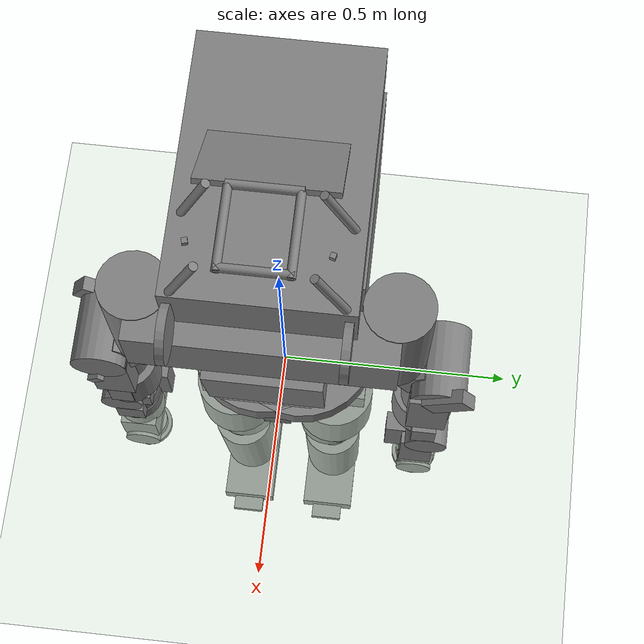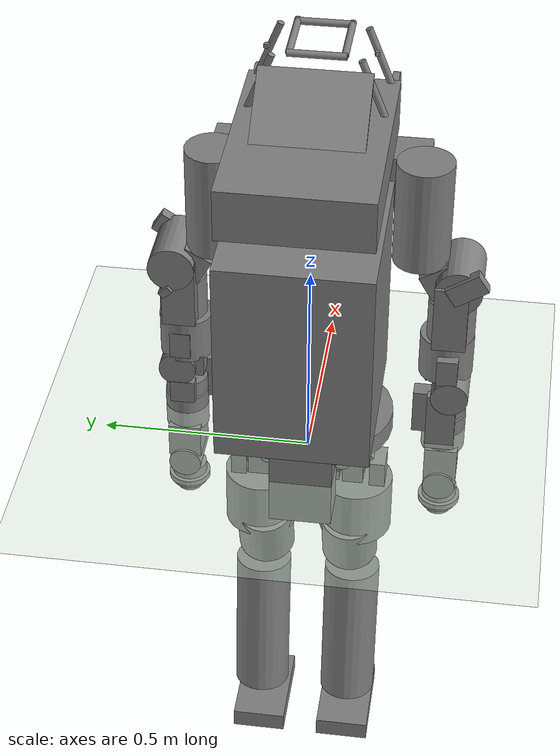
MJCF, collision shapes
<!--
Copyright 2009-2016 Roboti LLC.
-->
<mujoco model="Atlas">
    <compiler angle="radian" meshdir="./meshes/" autolimits="true"/>

    <option cone="pyramidal" impratio="100"/>

	<default>
		<joint damping="0.0" armature="0.1" frictionloss="1.0" type="hinge" pos="0 0 0"/>
		<geom solref="-1000 -80" friction="1.0 0.1 0.1" margin="0.001" group="1" />
        <default class="collision">
            <geom group="3" mass="0" density="0"/>
        </default>
		<default class="viz">
			<geom contype="0" conaffinity="0" group="0" type="mesh" rgba=".6 .6 .7 1"/>
		</default>
		<motor ctrllimited="true"/>
	</default>

	<asset>
		<mesh name="pelvis"         file="pelvis.stl"/>
		<mesh name="ltorso"         file="ltorso.stl"/>
		<mesh name="mtorso"         file="mtorso.stl"/>
		<mesh name="utorso"         file="utorso.stl"/>
		<mesh name="r_clav"         file="r_clav.stl"/>
		<mesh name="r_scap"         file="r_scap.stl"/>
		<mesh name="r_uarm"         file="r_uarm.stl"/>
		<mesh name="r_larm"         file="r_larm.stl"/>
		<mesh name="r_farm"         file="r_farm.stl"/>
		<mesh name="r_hand"         file="r_hand.stl"/>
		<mesh name="l_uglut"        file="l_uglut.stl"/>
		<mesh name="l_lglut"        file="l_lglut.stl"/>
		<mesh name="l_uleg"         file="l_uleg.stl"/>
		<mesh name="l_lleg"         file="l_lleg.stl"/>
		<mesh name="l_talus"        file="l_talus.stl"/>
		<mesh name="l_foot"         file="l_foot.stl"/>
		<mesh name="r_uglut"        file="r_uglut.stl"/>
		<mesh name="r_lglut"        file="r_lglut.stl"/>
		<mesh name="r_uleg"         file="r_uleg.stl"/>
		<mesh name="r_lleg"         file="r_lleg.stl"/>
		<mesh name="r_talus"        file="r_talus.stl"/>
		<mesh name="r_foot"         file="r_foot.stl"/>

        <texture name="texplane" type="2d" builtin="checker" rgb1=".12 .14 .44" rgb2=".37 .55 1" width="100" height="100"/>
        <material name="MatPlane" reflectance="0.5" texture="texplane" texrepeat="1 1" texuniform="true"/>
	</asset>

    <worldbody>
        <geom name="floor" pos="0 0 0" condim="3" material="MatPlane" size="100 100 0.125" rgba="0.8 0.9 0.8 1" type="plane"></geom>
        <light cutoff="100" diffuse="1 1 1" dir="-0 0 -1.3" directional="true" exponent="1" pos="0 0 1.3" specular=".1 .1 .1" castshadow="false"/>
        <light name="spotlight" mode="targetbodycom" target="trunk" pos="0 -1 2"/>

		<body name="trunk" pos="0 0 0.0">
            <camera name="track" mode="trackcom" pos="0 -2 0" xyaxes="1 0 0 0 0 1"/>

            <freejoint/>

            <inertial pos="0.0111 0 0.0271" quat="0.698584 0.713914 0.0424837 -0.0224092" mass="9.509" diaginertia="0.124488 0.116646 0.0957666" />

            <geom class="viz" mesh="pelvis"/>
            <geom class="collision" type="cylinder" size="0.11 0.03" pos="0.046 0 0.01" quat="0.707107 0.707107 0 0" />
            <geom class="collision" type="cylinder" size="0.11 0.03" pos="-0.03 0 0.01" quat="0.707107 0.707107 0 0" />
            <geom class="collision" type="cylinder" size="0.16 0.025" pos="0.01 0.042 0.09" />
            <geom class="collision" type="cylinder" size="0.16 0.025" pos="0.01 -0.042 0.09" />
            <geom class="collision" type="box" size="0.05 0.075 0.1" pos="-0.1 0 -0.02" />

            <body name="ltorso" pos="-0.0125 0 0">
                <inertial pos="-0.0112984 -3.15366e-006 0.0746835" quat="0.997071 0.000128212 0.076485 -0.00012406" mass="2.27" diaginertia="0.003962 0.00341694 0.00169212" />
                <joint name="back_bkz" stiffness="20" damping="10" axis="0 0 1" range="-0.663225 0.663225"/>
                <geom class="viz" mesh="ltorso"/>
                <body name="mtorso" pos="0 0 0.162">
                    <inertial pos="-0.00816266 -0.0131245 0.0305974" quat="0.108378 0.49314 0.746335 0.433648" mass="0.799" diaginertia="0.000536243 0.000487378 0.000358057" />
                    <joint name="back_bky" stiffness="20" damping="10" axis="0 -1 0" range="-0.538783 0.219388"/>
                    <geom class="viz" mesh="mtorso"/>
                    <geom class="collision" type="cylinder" size="0.02 0.075" pos="0 0 -0.02" />
                    <body name="utorso" pos="0 0 0.05">
                        <inertial pos="-0.0622 0.0023 0.3157" quat="0.450601 -0.0341277 -0.0439518 0.89099" mass="84.409" diaginertia="1.62425 1.5673 0.552443" />
                        <joint name="back_bkx" stiffness="30" damping="10" axis="-1 0 0" range="-0.523599 0.523599"/>
                        <geom class="viz" mesh="utorso"/>
                        <geom class="collision" type="box" size="0.2 0.175 0.25" pos="-0.102 0 0.25" />
                        <geom class="collision" type="box" size="0.065 0.25 0.05" pos="0.2 0 0.46" quat="0.707141 0 0.707073 0" />
                        <geom name="middle_chest" class="collision" type="box" size="0.1 0.115 0.05" pos="0.2 0 0.285" quat="0.659983 0 0.75128 0" />
                        <geom class="collision" type="box" size="0.1 0.09 0.05" pos="0.15 0 0.1" quat="0.540302 0 0.841471 0" />
                        <geom class="collision" type="box" size="0.253153 0.17086 0.06" pos="-0.035 0 0.6265" />
                        <geom class="collision" type="cylinder" size="0.008 0.065" pos="0.208 0 0.8215" quat="0.707141 0.707073 0 0" />
                        <geom class="collision" type="cylinder" size="0.008 0.075" pos="0.208 -0.125 0.745" quat="0.981496 -0.191485 0 0" />
                        <geom class="collision" type="cylinder" size="0.008 0.075" pos="0.208 0.125 0.745" quat="0.981496 0.191485 0 0" />
                        <geom class="collision" type="cylinder" size="0.008 0.075" pos="0.063 -0.125 0.745" quat="0.981496 -0.191485 0 0" />
                        <geom class="collision" type="cylinder" size="0.008 0.075" pos="0.063 0.125 0.745" quat="0.981496 0.191485 0 0" />
                        <geom class="collision" type="cylinder" size="0.008 0.075" pos="0.14 0.06 0.8215" quat="0.500048 0.5 0.499952 0.5" />
                        <geom class="collision" type="cylinder" size="0.008 0.075" pos="0.14 -0.06 0.8215" quat="0.500048 0.5 0.499952 0.5" />
                        <geom class="collision" type="box" size="0.1 0.125 0.005" pos="-0.029 0 0.731" quat="0.947651 0 -0.319309 0" />
                        <geom class="collision" type="cylinder" size="0.008 0.065" pos="0.063 0 0.8215" quat="0.707141 0.707073 0 0" />
                        <geom class="collision" type="cylinder" size="0.055 0.008" pos="0.261 0.156 0.6215" quat="0.707141 0.707073 0 0" />
                        <geom class="collision" type="cylinder" size="0.055 0.008" pos="0.261 -0.156 0.6215" quat="0.707141 0.707073 0 0" />
                        <body name="l_clav" pos="0.1406 0.2256 0.4776" quat="0 0 0 1">
                            <inertial pos="0 0 -0.084" quat="0.684588 0.177029 -0.177029 0.684588" mass="4.466" diaginertia="0.011217 0.011 0.00178301" />
                            <joint name="l_arm_shz" axis="0 0 1" range="-1.5708 0.785398"/>
                            <geom class="viz" mesh="r_clav"/>
                            <geom class="collision" type="cylinder" size="0.0555 0.07625" pos="0 -0.11 -0.248" quat="0.707107 0 0.707107 0" />
                            <geom class="collision" type="cylinder" size="0.067 0.13" pos="0.005 -0.015 -0.08" />
                            <geom class="collision" type="box" size="0.05 0.035 0.036" pos="0.004 -0.064 -0.247" quat="0.865324 0.501213 0 0" />
                            <body name="l_scap" pos="0 -0.11 -0.245" axisangle="1 0 0 1.5708">
                                <inertial pos="0 0 0" quat="0.5 0.5 0.5 0.5" mass="3.899" diaginertia="0.00583 0.00583 0.00319" />
                                <joint name="l_arm_shx" axis="1 0 0" range="-1.5708 1.5708"/>
                                <geom class="viz" mesh="r_scap"/>
                                <geom class="collision" type="cylinder" size="0.057 0.0525" pos="-0.005 -0.115 -0.014" quat="0.707107 0.707107 0 0" />
                                <geom class="collision" type="box" size="0.08 0.085 0.04" pos="-0.005 -0.075 -0.015" />
                                <geom class="collision" type="box" size="0.01 0.0145 0.009" pos="0.076 -0.0615 0.0128" quat="0.431177 0.902268 0 0" />
                                <geom class="collision" type="box" size="0.014 0.045 0.025" pos="-0.075 0.015 0.019" quat="0.877583 0.479426 0 0" />
                                <body name="l_uarm" pos="0 -0.187 -0.016">
                                    <inertial pos="0 0.065 0" quat="0.707107 0.707107 0 0" mass="4.386" diaginertia="0.00656 0.00656 0.00358" />
                                    <joint name="l_arm_ely" axis="0 1 0" range="-3.14159 0"/>
                                    <geom class="viz" mesh="r_uarm"/>
                                    <geom class="collision" type="cylinder" size="0.065 0.055" pos="0 -0.035 -0.005" quat="0.707105 0.707108 0 0" />
                                    <geom class="collision" type="box" size="0.025 0.035 0.075" pos="-0.01 -0.043 0.002" quat="0.707107 0 0.707107 0" />
                                    <body name="l_larm" pos="0 -0.119 0.0092">
                                        <inertial pos="0 0 0" quat="0.5 0.5 0.5 0.5" mass="3.248" diaginertia="0.00446 0.00446 0.00265" />
                                        <joint name="l_arm_elx" axis="-1 0 0" range="0 2.35619"/>
                                        <geom class="viz" mesh="r_larm"/>
                                        <geom class="collision" type="cylinder" size="0.051 0.02" pos="0 -0.075 -0.01" quat="0.707107 -0.707107 0 0" />
                                        <geom class="collision" type="cylinder" size="0.045 0.0735" pos="-0.012 0 0.0025" quat="0.707107 0 0.707107 0" />
                                        <geom class="collision" type="box" size="0.0125 0.0775 0.035" pos="-0.07 -0.077 -0.015" />
                                        <geom class="collision" type="box" size="0.0125 0.03 0.03" pos="0.05 -0.067 -0.009" />
                                        <geom class="collision" type="box" size="0.02 0.0575 0.025" pos="-0.032 -0.071 -0.06" />
                                        <geom class="collision" type="box" size="0.0225 0.0275 0.0115" pos="0.03 0.01 -0.05" />
                                        <body name="l_ufarm" pos="0 -0.29955 -0.00921" quat="0 0 1 0">
                                            <inertial pos="0.00015 0.08296 0.00037" quat="0.707107 0.707107 0 0" mass="2.4798" diaginertia="0.012731 0.011948 0.002857" />
                                            <joint name="l_arm_wry" axis="0 1 0" range="-3.011 3.011"/>
                                            <geom class="viz" mesh="r_farm"/>
                                            <geom class="collision" type="cylinder" size="0.053 0.05" pos="0 0.15 0" quat="0.707388 0.706825 0 0" />
                                            <geom class="collision" type="box" size="0.04 0.045 0.055" pos="-0.001 0.07 0" quat="0.707107 0 0.707107 0" />
                                            <geom class="collision" type="cylinder" size="0.04 0.0625" pos="0 0.005 0" quat="0.707388 0 0.706825 0" />
                                            <body name="l_lfarm" pos="0 0 0">
                                                <inertial pos="0.00017 -0.02515 0.00163" quat="0.5 0.5 -0.5 0.5" mass="0.648" diaginertia="0.000825 0.000764 0.000429" />
                                                <joint name="l_arm_wrx" axis="1 0 0" range="-1.7628 1.7628"/>
                                                <geom class="viz" mesh="r_hand"/>
                                                <geom class="collision" type="cylinder" size="0.031 0.01" pos="0 -0.104 0" quat="0.707107 0.707107 0 0" />
                                                <geom class="collision" type="cylinder" size="0.045 0.0075" pos="0 -0.087 0" quat="0.707107 0.707107 0 0" />
                                                <geom class="collision" type="cylinder" size="0.052 0.0075" pos="0 -0.075 0" quat="0.707107 0.707107 0 0" />
                                                <geom class="collision" type="cylinder" size="0.043 0.0135" pos="0 -0.052 0" quat="0.707107 0.707107 0 0" />
                                            </body>
                                        </body>
                                    </body>
                                </body>
                            </body>
                        </body>
                        <body name="r_clav" pos="0.1406 -0.2256 0.4776">
                            <inertial pos="0 0 -0.084" quat="0.684588 0.177029 -0.177029 0.684588" mass="4.466" diaginertia="0.011217 0.011 0.00178301" />
                            <joint name="r_arm_shz" axis="0 0 1" range="-0.785398 1.5708"/>
                            <geom class="viz" mesh="r_clav"/>
                            <geom class="collision" type="cylinder" size="0.0555 0.07625" pos="0 -0.11 -0.248" quat="0.707107 0 0.707107 0" />
                            <geom class="collision" type="cylinder" size="0.067 0.13" pos="0.005 -0.015 -0.08" />
                            <geom class="collision" type="box" size="0.05 0.035 0.036" pos="0.004 -0.064 -0.247" quat="0.865324 0.501213 0 0" />
                            <body name="r_scap" pos="0 -0.11 -0.245" axisangle="1 0 0 1.5708">
                                <inertial pos="0 0 0" quat="0.5 0.5 0.5 0.5" mass="3.899" diaginertia="0.00583 0.00583 0.00319" />
                                <joint name="r_arm_shx" axis="-1 0 0" range="-1.5708 1.5708"/>
                                <geom class="viz" mesh="r_scap"/>
                                <geom class="collision" type="cylinder" size="0.057 0.0525" pos="-0.005 -0.115 -0.014" quat="0.707107 0.707107 0 0" />
                                <geom class="collision" type="box" size="0.08 0.085 0.04" pos="-0.005 -0.075 -0.015" />
                                <geom class="collision" type="box" size="0.01 0.0145 0.009" pos="0.076 -0.0615 0.0128" quat="0.431177 0.902268 0 0" />
                                <geom class="collision" type="box" size="0.014 0.045 0.025" pos="-0.075 0.015 0.019" quat="0.877583 0.479426 0 0" />
                                <body name="r_uarm" pos="0 -0.187 -0.016">
                                    <inertial pos="0 0.065 0" quat="0.707107 0.707107 0 0" mass="4.386" diaginertia="0.00656 0.00656 0.00358" />
                                    <joint name="r_arm_ely" axis="0 1 0" range="0 3.14159"/>
                                    <geom class="viz" mesh="r_uarm"/>
                                    <geom class="collision" type="cylinder" size="0.065 0.055" pos="0 -0.035 -0.005" quat="0.707105 0.707108 0 0" />
                                    <geom class="collision" type="box" size="0.025 0.035 0.075" pos="-0.01 -0.043 0.002" quat="0.707107 0 0.707107 0" />
                                    <body name="r_larm" pos="0 -0.119 0.0092">
                                        <inertial pos="0 0 0" quat="0.5 0.5 0.5 0.5" mass="3.248" diaginertia="0.00446 0.00446 0.00265" />
                                        <joint name="r_arm_elx" axis="1 0 0" range="-2.35619 0"/>
                                        <geom class="viz" mesh="r_larm"/>
                                        <geom class="collision" type="cylinder" size="0.051 0.02" pos="0 -0.075 -0.01" quat="0.707107 -0.707107 0 0" />
                                        <geom class="collision" type="cylinder" size="0.045 0.0735" pos="-0.012 0 0.0025" quat="0.707107 0 0.707107 0" />
                                        <geom class="collision" type="box" size="0.0125 0.0775 0.035" pos="-0.07 -0.077 -0.015" />
                                        <geom class="collision" type="box" size="0.0125 0.03 0.03" pos="0.05 -0.067 -0.009" />
                                        <geom class="collision" type="box" size="0.02 0.0575 0.025" pos="-0.032 -0.071 -0.06" />
                                        <geom class="collision" type="box" size="0.0225 0.0275 0.0115" pos="0.03 0.01 -0.05" />
                                        <body name="r_ufarm" pos="0 -0.29955 -0.00921">
                                            <inertial pos="0.00015 0.08296 0.00037" quat="0.707107 0.707107 0 0" mass="2.4798" diaginertia="0.012731 0.011948 0.002857" />
                                            <joint name="r_arm_wry" axis="0 1 0" range="-3.011 3.011"/>
                                            <geom class="viz" mesh="r_farm"/>
                                            <geom class="collision" type="cylinder" size="0.053 0.05" pos="0 0.15 0" quat="0.707388 0.706825 0 0" />
                                            <geom class="collision" type="box" size="0.04 0.045 0.055" pos="-0.001 0.07 0" quat="0.707107 0 0.707107 0" />
                                            <geom class="collision" type="cylinder" size="0.04 0.0625" pos="0 0.005 0" quat="0.707388 0 0.706825 0" />
                                            <body name="r_lfarm" pos="0 0 0">
                                                <inertial pos="0.00017 -0.02515 0.00163" quat="0.5 0.5 -0.5 0.5" mass="0.648" diaginertia="0.000825 0.000764 0.000429" />
                                                <joint name="r_arm_wrx" axis="1 0 0" range="-1.7628 1.7628"/>
                                                <geom class="viz" mesh="r_hand"/>
                                                <geom class="collision" type="cylinder" size="0.031 0.01" pos="0 -0.104 0" quat="0.707107 0.707107 0 0" />
                                                <geom class="collision" type="cylinder" size="0.045 0.0075" pos="0 -0.087 0" quat="0.707107 0.707107 0 0" />
                                                <geom class="collision" type="cylinder" size="0.052 0.0075" pos="0 -0.075 0" quat="0.707107 0.707107 0 0" />
                                                <geom class="collision" type="cylinder" size="0.043 0.0135" pos="0 -0.052 0" quat="0.707107 0.707107 0 0" />
                                            </body>
                                        </body>
                                    </body>
                                </body>
                            </body>
                        </body>
                        <body name="r_situational_awareness_camera_link" pos="0.155 -0.121 0.785" quat="0.793352 0 0 -0.608763">
                            <inertial pos="0 0 0" mass="0.1" diaginertia="1e-005 1e-005 1e-005" />
                            <geom class="collision" type="box" contype="0" conaffinity="0" group="1" size="0.005 0.005 0.005" pos="0 0 0" />
                            <body name="r_situational_awareness_camera_optical_frame" pos="0 0 0" quat="0.499998 -0.5 0.500002 -0.5">
                                <inertial pos="0 0 0" quat="0.499998 -0.5 0.500002 -0.5" mass="0" diaginertia="0 0 0" />
                            </body>
                        </body>
                        <body name="l_situational_awareness_camera_link" pos="0.155 0.121 0.785" quat="0.793352 0 0 0.608763">
                            <inertial pos="0 0 0" mass="0.1" diaginertia="1e-005 1e-005 1e-005" />
                            <geom class="collision" type="box" contype="0" conaffinity="0" group="1" size="0.005 0.005 0.005" pos="0 0 0" />
                            <body name="l_situational_awareness_camera_optical_frame" pos="0 0 0" quat="0.499998 -0.5 0.500002 -0.5">
                                <inertial pos="0 0 0" quat="0.499998 -0.5 0.500002 -0.5" mass="0" diaginertia="0 0 0" />
                            </body>
                        </body>
                    </body>
                </body>
            </body>
            <body name="l_uglut" pos="0 0.089 0" >
                <inertial pos="0.00529262 -0.00344732 0.00313046" quat="0.999122 -7.72169e-005 0.0419028 -0.000305187" mass="1.959" diaginertia="0.000745109 0.000688179 0.000410071" />
                <joint name="hip_flexion_l" damping="0" axis="0 1 0" range="-0.786794 0.786794"/>
                <geom class="viz" mesh="l_uglut"/>
                <geom class="collision" type="box" size="0.025 0.05 0.05" pos="0.01 0.005 0" quat="0.965694 0.259684 0 0" />
                <geom class="collision" type="cylinder" size="0.019841 0.040421" pos="0 0 0" />
                <body name="l_lglut" pos="0 0 0">
                    <inertial pos="0.0133341 0.0170484 -0.0312052" quat="0.353465 0.600383 0.388609 0.602981" mass="0.898" diaginertia="0.00133867 0.000995812 0.000690275" />
                    <joint name="hip_adduction_l" damping="0" axis="-1 0 0" range="-0.523599 0.523599"/>
                    <geom class="viz" mesh="l_lglut"/>
                    <geom class="collision" type="box" size="0.0625 0.025 0.04" pos="0.015 0.026 -0.028" />
                    <geom class="collision" type="cylinder" size="0.0200969 0.030153" pos="0.05 0.027488 -0.067" quat="0.707107 0.707107 0 0" />
                    <geom class="collision" type="cylinder" size="0.02 0.072" pos="0.0115 0 0" quat="0.707107 0 0.707107 0" />
                    <geom class="collision" type="box" size="0.04875 0.0345 0.0515" pos="0.01 0.02 0.01" />
                    <body name="l_uleg" pos="0.05 0.0225 -0.066">
                        <inertial pos="0 0 -0.21" mass="8.204" diaginertia="0.09 0.09 0.02" />
                        <joint name="hip_rotation_l" damping="0" axis="0 0 -1" range="-1.61234 1.61234"/>
                        <geom class="viz" mesh="l_uleg"/>
                        <geom class="collision" type="cylinder" size="0.09 0.075" pos="-0.0199 0.00585 -0.122" />
                        <geom class="collision" type="cylinder" size="0.07 0.075" pos="-0.032 -0.005 -0.224" quat="0.988771 0 -0.149438 0" />
                        <geom class="collision" type="cylinder" size="0.05 0.075" pos="0.003 0.015 -0.254" quat="0.995083 -0.0747715 0.0647716 0.004867" />
                        <geom class="collision" type="box" size="0.035 0.019 0.075" pos="-0.007 -0.053 -0.052" />
                        <geom class="collision" type="box" size="0.035 0.019 0.07" pos="-0.017 0.0595 -0.049" />
                        <body name="l_lleg" pos="-0.05 0 -0.374">
                            <inertial pos="0.001 0 -0.187" quat="0.999751 0 0.0223266 0" mass="4.515" diaginertia="0.0771341 0.076 0.00986594" />
                            <joint name="knee_angle_l" damping="0" axis="0 1 0"    range="-0.174 2.35637"/>
                            <geom class="viz" mesh="l_lleg"/>
                            <geom class="collision" type="cylinder" size="0.07 0.2" pos="0.02 0.00295 -0.182" quat="0.99875 0 0.0499792 0" />
                            <body name="l_talus" pos="0 0 -0.422">
                                <inertial pos="0 0 0" quat="0.5 0.5 -0.5 0.5" mass="0.125" diaginertia="1.30101e-005 1.01674e-005 8.42775e-006" />
                                <joint name="ankle_angle_y_l" damping="0" axis="0 1 0"   range="-1.0 1.0"/>
                                <geom class="viz" mesh="l_talus"/>
                                <geom class="collision" type="cylinder" size="0.010181 0.014771" pos="0 0 0" quat="0.707107 0 0.707107 0" />
                                <geom class="collision" type="cylinder" size="0.010348 0.0050295" pos="0 0 0" quat="0.707107 0.707107 0 0" />
                                <body name="l_foot" pos="0 0 0">
                                    <inertial pos="0.027 0 -0.067" quat="0 0.707107 0 0.707107" mass="2.41" diaginertia="0.008 0.007 0.002" />
                                    <joint name="ankle_angle_x_l" axis="-1 0 0" range="-0.8 0.8"/>
                                    <geom class="viz" mesh="l_foot"/>
                                    <geom name="left_foot_back" class="collision" type="box" size="0.1135 0.0669435 0.025" pos="0.023 0 -0.049119" />
                                    <geom name="left_foot_front" class="collision" type="box" size="0.05 0.04 0.01" pos="0.1225 0 -0.0641" />
                                </body>
                            </body>
                        </body>
                    </body>
                </body>
            </body>
            <body name="r_uglut" pos="0 -0.089 0">
                <inertial pos="0.00529262 0.00344732 0.00313046" quat="0.999122 7.72169e-005 0.0419028 0.000305187" mass="1.959" diaginertia="0.000745109 0.000688179 0.000410071" />
                <joint name="hip_flexion_r" damping="0" axis="0 -1 0" range="-0.786794 0.786794"/>
                <geom class="viz" mesh="r_uglut"/>
                <geom class="collision" type="box" size="0.025 0.05 0.05" pos="0.01 -0.005 0" quat="0.965694 -0.259684 0 0" />
                <geom class="collision" type="cylinder" size="0.019841 0.040421" pos="0 0 0" />
                <body name="r_lglut" pos="0 0 0">
                    <inertial pos="0.0133341 -0.0170484 -0.0312052" quat="0.602981 0.388609 0.600383 0.353465" mass="0.898" diaginertia="0.00133867 0.000995812 0.000690275" />
                    <joint name="hip_adduction_r" damping="0" axis="-1 0 0" range="-0.523599 0.523599"/>
                    <geom class="viz" mesh="r_lglut"/>
                    <geom class="collision" type="box" size="0.0625 0.025 0.04" pos="0.015 -0.026 -0.028" />
                    <geom class="collision" type="cylinder" size="0.0200969 0.030153" pos="0.05 -0.027488 -0.067" quat="0.707107 0.707107 0 0" />
                    <geom class="collision" type="cylinder" size="0.02 0.071" pos="0.0105 0 0" quat="0.707107 0 0.707107 0" />
                    <geom class="collision" type="box" size="0.04875 0.0345 0.0515" pos="0.01 -0.02 0.01" />
                    <body name="r_uleg" pos="0.05 -0.0225 -0.066">
                        <inertial pos="0 0 -0.21" mass="8.204" diaginertia="0.09 0.09 0.02" />
                        <joint name="hip_rotation_r" damping="0" axis="0 0 -1"   range="-1.61234 1.61234"/>
                        <geom class="viz" mesh="r_uleg"/>
                        <geom class="collision" type="cylinder" size="0.09 0.075" pos="-0.0199 -0.00585 -0.122" />
                        <geom class="collision" type="cylinder" size="0.07 0.075" pos="-0.032 0.005 -0.224" quat="0.988771 0 -0.149438 0" />
                        <geom class="collision" type="cylinder" size="0.05 0.075" pos="0.003 -0.015 -0.254" quat="0.995083 0.0747715 0.0647716 -0.004867" />
                        <geom class="collision" type="box" size="0.035 0.019 0.075" pos="-0.007 0.053 -0.052" />
                        <geom class="collision" type="box" size="0.035 0.019 0.07" pos="-0.017 -0.0595 -0.049" />
                        <body name="r_lleg" pos="-0.05 0 -0.374">
                            <inertial pos="0.001 0 -0.187" quat="0.999751 0 0.0223266 0" mass="4.515" diaginertia="0.0771341 0.076 0.00986594" />
                            <joint name="knee_angle_r" damping="0" axis="0 -1 0"   range="-2.35637 0.174"/>
                            <geom class="viz" mesh="r_lleg"/>
                            <geom class="collision" type="cylinder" size="0.07 0.2" pos="0.02 -0.00295 -0.182" quat="0.99875 0 0.0499792 0" />
                            <body name="r_talus" pos="0 0 -0.422">
                                <inertial pos="0 0 0" quat="0.5 0.5 -0.5 0.5" mass="0.125" diaginertia="1.30101e-005 1.01674e-005 8.42775e-006" />
                                <joint name="ankle_angle_y_r" damping="0" axis="0 -1 0"   range="-1.0 1.0"/>
                                <geom class="viz" mesh="r_talus"/>
                                <geom class="collision" type="cylinder" size="0.010181 0.014771" pos="0 0 0" quat="0.707107 0 0.707107 0" />
                                <geom class="collision" type="cylinder" size="0.010348 0.0050295" pos="0 0 0" quat="0.707107 0.707107 0 0" />
                                <body name="r_foot" pos="0 0 0">
                                    <inertial pos="0.027 0 -0.067" quat="0 0.707107 0 0.707107" mass="2.41" diaginertia="0.008 0.007 0.002" />
                                    <joint name="ankle_angle_x_r" axis="-1 0 0" range="-0.8 0.8"/>
                                    <geom class="viz" mesh="r_foot"/>
                                    <geom name="right_foot_back" class="collision" type="box" size="0.1135 0.0669435 0.025" pos="0.023 0 -0.049119" />
                                    <geom name="right_foot_front" class="collision" type="box" size="0.05 0.04 0.01" pos="0.1225 0 -0.0641" />
                                </body>
                            </body>
                        </body>
                    </body>
                </body>
            </body>
        </body>
    </worldbody>

    <contact>
        <exclude body1="trunk" body2="mtorso"/>
        <exclude body1="trunk" body2="l_lglut"/>
        <exclude body1="trunk" body2="r_lglut"/>
        <exclude body1="trunk" body2="l_uleg"/>
        <exclude body1="trunk" body2="r_uleg"/>
        <exclude body1="l_uglut" body2="l_uleg"/>
        <exclude body1="r_uglut" body2="r_uleg"/>
    </contact>

	<actuator>
		<motor name="back_bkz_actuator"  joint="back_bkz" ctrlrange="-106.0 106.0"/>
		<motor name="back_bky_actuator"  joint="back_bky" ctrlrange="-445.0 445.0"/>
		<motor name="back_bkx_actuator"  joint="back_bkx" ctrlrange="-300.0 300.0"/>

		<motor name="l_arm_shz_actuator" joint="l_arm_shz" ctrlrange="-87.0 87.0"/>
		<motor name="l_arm_shx_actuator" joint="l_arm_shx" ctrlrange="-99.0 99.0"/>
		<motor name="l_arm_ely_actuator" joint="l_arm_ely" ctrlrange="-63.0 63.0"/>
		<motor name="l_arm_elx_actuator" joint="l_arm_elx" ctrlrange="-112.0 112.0"/>
		<motor name="l_arm_wry_actuator" joint="l_arm_wry" ctrlrange="-25.0 25.0"/>
		<motor name="l_arm_wrx_actuator" joint="l_arm_wrx" ctrlrange="-25.0 25.0"/>

		<motor name="r_arm_shz_actuator" joint="r_arm_shz" ctrlrange="-87.0 87.0"/>
		<motor name="r_arm_shx_actuator" joint="r_arm_shx" ctrlrange="-99.0 99.0"/>
		<motor name="r_arm_ely_actuator" joint="r_arm_ely" ctrlrange="-63.0 63.0"/>
		<motor name="r_arm_elx_actuator" joint="r_arm_elx" ctrlrange="-112.0 112.0"/>
		<motor name="r_arm_wry_actuator" joint="r_arm_wry" ctrlrange="-25.0 25.0"/>
		<motor name="r_arm_wrx_actuator" joint="r_arm_wrx" ctrlrange="-25.0 25.0"/>

		<motor name="hip_flexion_l_actuator" joint="hip_flexion_l" ctrlrange="-275.0 275.0"/>
		<motor name="hip_adduction_l_actuator" joint="hip_adduction_l" ctrlrange="-530.0 530.0"/>
		<motor name="hip_rotation_l_actuator" joint="hip_rotation_l" ctrlrange="-840.0 840.0"/>
		<motor name="knee_angle_l_actuator" joint="knee_angle_l" ctrlrange="-890.0 890.0"/>
		<motor name="ankle_angle_y_l_actuator" joint="ankle_angle_y_l" ctrlrange="-740.0 740.0"/>
		<motor name="ankle_angle_x_l_actuator" joint="ankle_angle_x_l" ctrlrange="-360.0 360.0"/>

		<motor name="hip_flexion_r_actuator" joint="hip_flexion_r" ctrlrange="-275.0 275.0"/>
		<motor name="hip_adduction_r_actuator" joint="hip_adduction_r" ctrlrange="-530.0 530.0"/>
		<motor name="hip_rotation_r_actuator" joint="hip_rotation_r" ctrlrange="-840.0 840.0"/>
		<motor name="knee_angle_r_actuator" joint="knee_angle_r" ctrlrange="-890.0 890.0"/>
		<motor name="ankle_angle_y_actuator" joint="ankle_angle_y_r" ctrlrange="-360.0 360.0"/>
		<motor name="ankle_angle_x_r_actuator" joint="ankle_angle_x_r" ctrlrange="-360.0 360.0"/>
	</actuator>

    <keyframe>
        <key name="home" qpos="0 0 0.87 1 0 0 0 0.0 0.0 0.0 0.0 -0.3 -3.14 0.3 0.0 0.0 0.0 0.3 3.14 -0.3 0.0 0.0 -0.4 0.0 0.0 0.8 -0.4 0.0 0.4 0.0 0.0 -0.8 0.4 0.0"/>
    </keyframe>
</mujoco>
